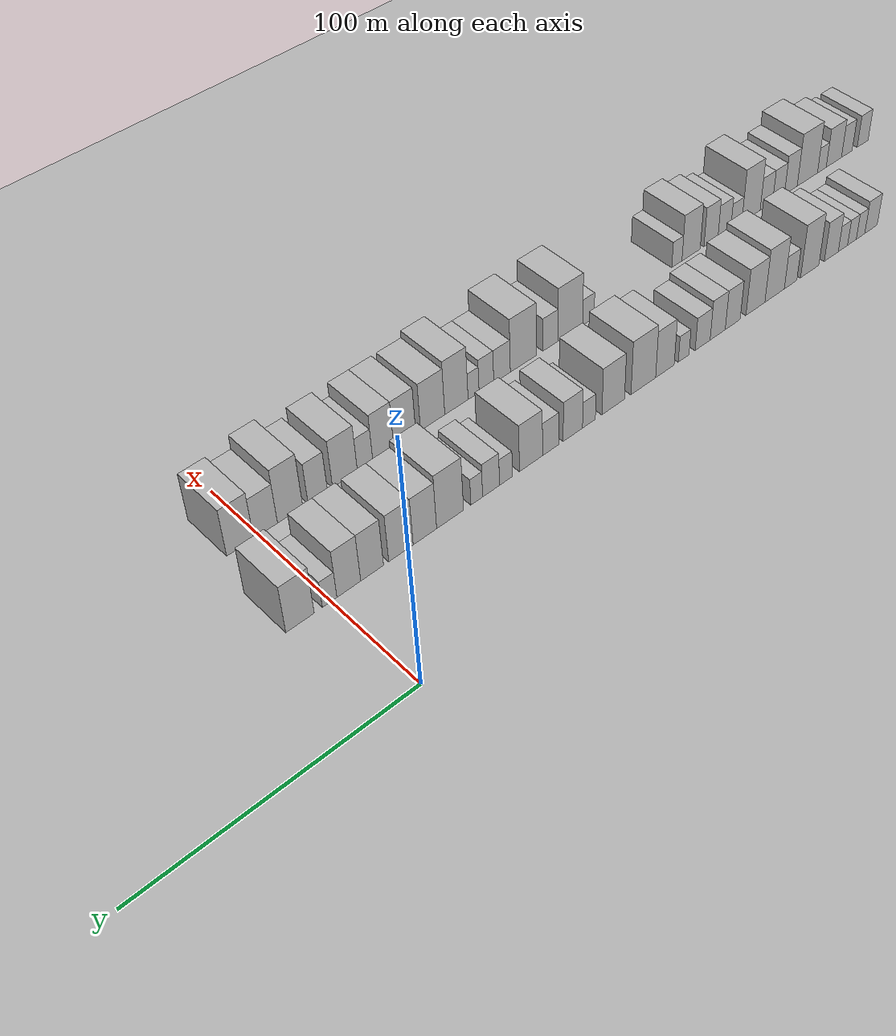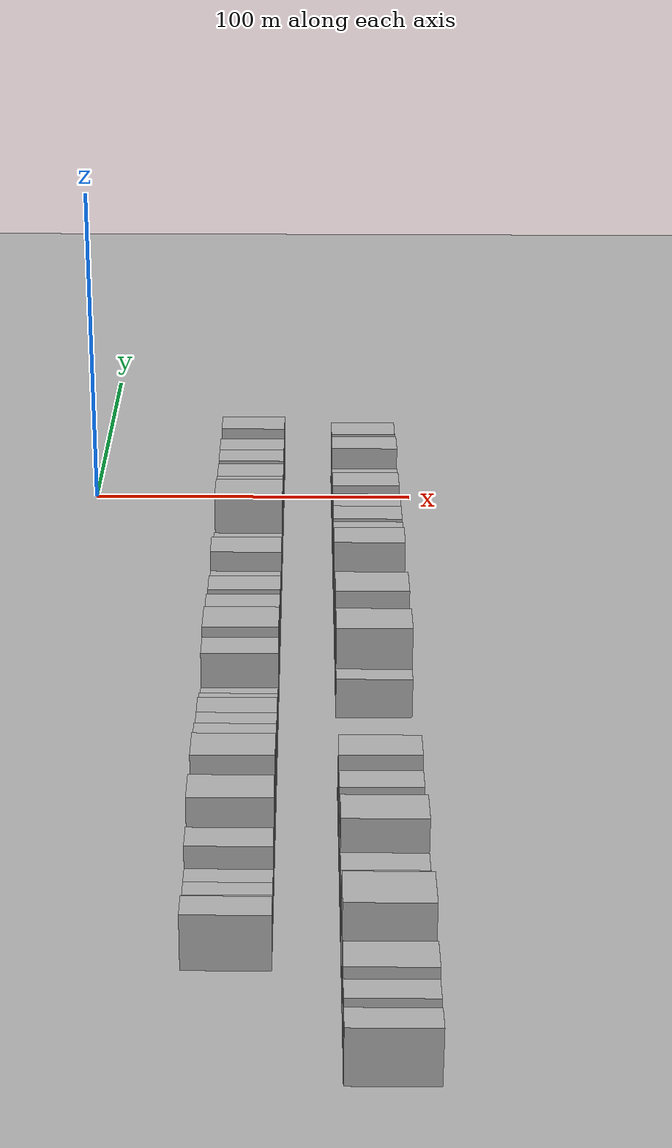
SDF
<sdf version="1.6">
 <world name="default">
  <include><name>ground_plane_1</name><uri>model://HANNAS_ground_plane</uri></include>
  <include>
   <name>ground_plane_2</name>
   <uri>model://HANNAS_ground_plane</uri>
   <pose>100 0 0  0 0 0</pose>
  </include>
  <model name="building_1">
   <static>1</static>
   <pose>50.0000 -248.3277 0 0.000000 0.000000 0.000000</pose>
   <link name="link">
    <pose>0 0 7.50 0 0 0</pose>
    <collision name="collision"><geometry><box><size>20.0000 7.1149 15.0000</size></box></geometry></collision>
    <visual name="visual">
     <cast_shadows>0</cast_shadows>
     <geometry><box><size>20.0000 7.1149 15.0000</size></box></geometry>
     <material>
      <script>
       <uri>model://HANNAS_wall/materials/scripts</uri>
       <uri>model://HANNAS_wall/materials/textures</uri>
       <name>vrc/HANNAS_wall</name>
      </script>
     </material>
    </visual>
   </link>
  </model>
  <model name="building_2">
   <static>1</static>
   <pose>50.0000 -242.3634 0 0.000000 0.000000 0.000000</pose>
   <link name="link">
    <pose>0 0 6.00 0 0 0</pose>
    <collision name="collision"><geometry><box><size>20.0000 4.8136 12.0000</size></box></geometry></collision>
    <visual name="visual">
     <cast_shadows>0</cast_shadows>
     <geometry><box><size>20.0000 4.8136 12.0000</size></box></geometry>
     <material>
      <script>
       <uri>model://HANNAS_wall/materials/scripts</uri>
       <uri>model://HANNAS_wall/materials/textures</uri>
       <name>vrc/HANNAS_wall</name>
      </script>
     </material>
    </visual>
   </link>
  </model>
  <model name="building_3">
   <static>1</static>
   <pose>50.0000 -237.5000 0 0.000000 0.000000 0.000000</pose>
   <link name="link">
    <pose>0 0 6.00 0 0 0</pose>
    <collision name="collision"><geometry><box><size>20.0000 4.9132 12.0000</size></box></geometry></collision>
    <visual name="visual">
     <cast_shadows>0</cast_shadows>
     <geometry><box><size>20.0000 4.9132 12.0000</size></box></geometry>
     <material>
      <script>
       <uri>model://HANNAS_wall/materials/scripts</uri>
       <uri>model://HANNAS_wall/materials/textures</uri>
       <name>vrc/HANNAS_wall</name>
      </script>
     </material>
    </visual>
   </link>
  </model>
  <model name="building_4">
   <static>1</static>
   <pose>50.0000 -232.4500 0 0.000000 0.000000 0.000000</pose>
   <link name="link">
    <pose>0 0 6.00 0 0 0</pose>
    <collision name="collision"><geometry><box><size>20.0000 5.1869 12.0000</size></box></geometry></collision>
    <visual name="visual">
     <cast_shadows>0</cast_shadows>
     <geometry><box><size>20.0000 5.1869 12.0000</size></box></geometry>
     <material>
      <script>
       <uri>model://HANNAS_wall/materials/scripts</uri>
       <uri>model://HANNAS_wall/materials/textures</uri>
       <name>vrc/HANNAS_wall</name>
      </script>
     </material>
    </visual>
   </link>
  </model>
  <model name="building_5">
   <static>1</static>
   <pose>50.0000 -226.0046 0 0.000000 0.000000 0.000000</pose>
   <link name="link">
    <pose>0 0 9.00 0 0 0</pose>
    <collision name="collision"><geometry><box><size>20.0000 7.7039 18.0000</size></box></geometry></collision>
    <visual name="visual">
     <cast_shadows>0</cast_shadows>
     <geometry><box><size>20.0000 7.7039 18.0000</size></box></geometry>
     <material>
      <script>
       <uri>model://HANNAS_wall/materials/scripts</uri>
       <uri>model://HANNAS_wall/materials/textures</uri>
       <name>vrc/HANNAS_wall</name>
      </script>
     </material>
    </visual>
   </link>
  </model>
  <model name="building_6">
   <static>1</static>
   <pose>50.0000 -214.1947 0 0.000000 0.000000 0.000000</pose>
   <link name="link">
    <pose>0 0 12.00 0 0 0</pose>
    <collision name="collision"><geometry><box><size>20.0000 9.9158 24.0000</size></box></geometry></collision>
    <visual name="visual">
     <cast_shadows>0</cast_shadows>
     <geometry><box><size>20.0000 9.9158 24.0000</size></box></geometry>
     <material>
      <script>
       <uri>model://HANNAS_wall/materials/scripts</uri>
       <uri>model://HANNAS_wall/materials/textures</uri>
       <name>vrc/HANNAS_wall</name>
      </script>
     </material>
    </visual>
   </link>
  </model>
  <model name="building_7">
   <static>1</static>
   <pose>50.0000 -203.8955 0 0.000000 0.000000 0.000000</pose>
   <link name="link">
    <pose>0 0 7.50 0 0 0</pose>
    <collision name="collision"><geometry><box><size>20.0000 6.6826 15.0000</size></box></geometry></collision>
    <visual name="visual">
     <cast_shadows>0</cast_shadows>
     <geometry><box><size>20.0000 6.6826 15.0000</size></box></geometry>
     <material>
      <script>
       <uri>model://HANNAS_wall/materials/scripts</uri>
       <uri>model://HANNAS_wall/materials/textures</uri>
       <name>vrc/HANNAS_wall</name>
      </script>
     </material>
    </visual>
   </link>
  </model>
  <model name="building_8">
   <static>1</static>
   <pose>50.0000 -195.4504 0 0.000000 0.000000 0.000000</pose>
   <link name="link">
    <pose>0 0 12.00 0 0 0</pose>
    <collision name="collision"><geometry><box><size>20.0000 10.2077 24.0000</size></box></geometry></collision>
    <visual name="visual">
     <cast_shadows>0</cast_shadows>
     <geometry><box><size>20.0000 10.2077 24.0000</size></box></geometry>
     <material>
      <script>
       <uri>model://HANNAS_wall/materials/scripts</uri>
       <uri>model://HANNAS_wall/materials/textures</uri>
       <name>vrc/HANNAS_wall</name>
      </script>
     </material>
    </visual>
   </link>
  </model>
  <model name="building_9">
   <static>1</static>
   <pose>50.0000 -185.4617 0 0.000000 0.000000 0.000000</pose>
   <link name="link">
    <pose>0 0 10.50 0 0 0</pose>
    <collision name="collision"><geometry><box><size>20.0000 9.7698 21.0000</size></box></geometry></collision>
    <visual name="visual">
     <cast_shadows>0</cast_shadows>
     <geometry><box><size>20.0000 9.7698 21.0000</size></box></geometry>
     <material>
      <script>
       <uri>model://HANNAS_wall/materials/scripts</uri>
       <uri>model://HANNAS_wall/materials/textures</uri>
       <name>vrc/HANNAS_wall</name>
      </script>
     </material>
    </visual>
   </link>
  </model>
  <model name="building_10">
   <static>1</static>
   <pose>50.0000 -173.8028 0 0.000000 0.000000 0.000000</pose>
   <link name="link">
    <pose>0 0 9.00 0 0 0</pose>
    <collision name="collision"><geometry><box><size>20.0000 7.5480 18.0000</size></box></geometry></collision>
    <visual name="visual">
     <cast_shadows>0</cast_shadows>
     <geometry><box><size>20.0000 7.5480 18.0000</size></box></geometry>
     <material>
      <script>
       <uri>model://HANNAS_wall/materials/scripts</uri>
       <uri>model://HANNAS_wall/materials/textures</uri>
       <name>vrc/HANNAS_wall</name>
      </script>
     </material>
    </visual>
   </link>
  </model>
  <model name="building_11">
   <static>1</static>
   <pose>50.0000 -166.2367 0 0.000000 0.000000 0.000000</pose>
   <link name="link">
    <pose>0 0 9.00 0 0 0</pose>
    <collision name="collision"><geometry><box><size>20.0000 7.5842 18.0000</size></box></geometry></collision>
    <visual name="visual">
     <cast_shadows>0</cast_shadows>
     <geometry><box><size>20.0000 7.5842 18.0000</size></box></geometry>
     <material>
      <script>
       <uri>model://HANNAS_wall/materials/scripts</uri>
       <uri>model://HANNAS_wall/materials/textures</uri>
       <name>vrc/HANNAS_wall</name>
      </script>
     </material>
    </visual>
   </link>
  </model>
  <model name="building_12">
   <static>1</static>
   <pose>50.0000 -158.7453 0 0.000000 0.000000 0.000000</pose>
   <link name="link">
    <pose>0 0 7.50 0 0 0</pose>
    <collision name="collision"><geometry><box><size>20.0000 7.3986 15.0000</size></box></geometry></collision>
    <visual name="visual">
     <cast_shadows>0</cast_shadows>
     <geometry><box><size>20.0000 7.3986 15.0000</size></box></geometry>
     <material>
      <script>
       <uri>model://HANNAS_wall/materials/scripts</uri>
       <uri>model://HANNAS_wall/materials/textures</uri>
       <name>vrc/HANNAS_wall</name>
      </script>
     </material>
    </visual>
   </link>
  </model>
  <model name="building_13">
   <static>1</static>
   <pose>50.0000 -149.4394 0 0.000000 0.000000 0.000000</pose>
   <link name="link">
    <pose>0 0 6.00 0 0 0</pose>
    <collision name="collision"><geometry><box><size>20.0000 5.2131 12.0000</size></box></geometry></collision>
    <visual name="visual">
     <cast_shadows>0</cast_shadows>
     <geometry><box><size>20.0000 5.2131 12.0000</size></box></geometry>
     <material>
      <script>
       <uri>model://HANNAS_wall/materials/scripts</uri>
       <uri>model://HANNAS_wall/materials/textures</uri>
       <name>vrc/HANNAS_wall</name>
      </script>
     </material>
    </visual>
   </link>
  </model>
  <model name="building_14">
   <static>1</static>
   <pose>50.0000 -140.3880 0 0.000000 0.000000 0.000000</pose>
   <link name="link">
    <pose>0 0 10.50 0 0 0</pose>
    <collision name="collision"><geometry><box><size>20.0000 8.8898 21.0000</size></box></geometry></collision>
    <visual name="visual">
     <cast_shadows>0</cast_shadows>
     <geometry><box><size>20.0000 8.8898 21.0000</size></box></geometry>
     <material>
      <script>
       <uri>model://HANNAS_wall/materials/scripts</uri>
       <uri>model://HANNAS_wall/materials/textures</uri>
       <name>vrc/HANNAS_wall</name>
      </script>
     </material>
    </visual>
   </link>
  </model>
  <model name="building_15">
   <static>1</static>
   <pose>50.0000 -130.1336 0 0.000000 0.000000 0.000000</pose>
   <link name="link">
    <pose>0 0 12.00 0 0 0</pose>
    <collision name="collision"><geometry><box><size>20.0000 11.6189 24.0000</size></box></geometry></collision>
    <visual name="visual">
     <cast_shadows>0</cast_shadows>
     <geometry><box><size>20.0000 11.6189 24.0000</size></box></geometry>
     <material>
      <script>
       <uri>model://HANNAS_wall/materials/scripts</uri>
       <uri>model://HANNAS_wall/materials/textures</uri>
       <name>vrc/HANNAS_wall</name>
      </script>
     </material>
    </visual>
   </link>
  </model>
  <model name="building_16">
   <static>1</static>
   <pose>50.0000 -116.1493 0 0.000000 0.000000 0.000000</pose>
   <link name="link">
    <pose>0 0 10.50 0 0 0</pose>
    <collision name="collision"><geometry><box><size>20.0000 10.3499 21.0000</size></box></geometry></collision>
    <visual name="visual">
     <cast_shadows>0</cast_shadows>
     <geometry><box><size>20.0000 10.3499 21.0000</size></box></geometry>
     <material>
      <script>
       <uri>model://HANNAS_wall/materials/scripts</uri>
       <uri>model://HANNAS_wall/materials/textures</uri>
       <name>vrc/HANNAS_wall</name>
      </script>
     </material>
    </visual>
   </link>
  </model>
  <model name="building_17">
   <static>1</static>
   <pose>50.0000 -105.0805 0 0.000000 0.000000 0.000000</pose>
   <link name="link">
    <pose>0 0 6.00 0 0 0</pose>
    <collision name="collision"><geometry><box><size>20.0000 5.7877 12.0000</size></box></geometry></collision>
    <visual name="visual">
     <cast_shadows>0</cast_shadows>
     <geometry><box><size>20.0000 5.7877 12.0000</size></box></geometry>
     <material>
      <script>
       <uri>model://HANNAS_wall/materials/scripts</uri>
       <uri>model://HANNAS_wall/materials/textures</uri>
       <name>vrc/HANNAS_wall</name>
      </script>
     </material>
    </visual>
   </link>
  </model>
  <model name="building_18">
   <static>1</static>
   <pose>50.0000 -97.8839 0 0.000000 0.000000 0.000000</pose>
   <link name="link">
    <pose>0 0 9.00 0 0 0</pose>
    <collision name="collision"><geometry><box><size>20.0000 8.6054 18.0000</size></box></geometry></collision>
    <visual name="visual">
     <cast_shadows>0</cast_shadows>
     <geometry><box><size>20.0000 8.6054 18.0000</size></box></geometry>
     <material>
      <script>
       <uri>model://HANNAS_wall/materials/scripts</uri>
       <uri>model://HANNAS_wall/materials/textures</uri>
       <name>vrc/HANNAS_wall</name>
      </script>
     </material>
    </visual>
   </link>
  </model>
  <model name="building_19">
   <static>1</static>
   <pose>50.0000 -88.0649 0 0.000000 0.000000 0.000000</pose>
   <link name="link">
    <pose>0 0 7.50 0 0 0</pose>
    <collision name="collision"><geometry><box><size>20.0000 7.0328 15.0000</size></box></geometry></collision>
    <visual name="visual">
     <cast_shadows>0</cast_shadows>
     <geometry><box><size>20.0000 7.0328 15.0000</size></box></geometry>
     <material>
      <script>
       <uri>model://HANNAS_wall/materials/scripts</uri>
       <uri>model://HANNAS_wall/materials/textures</uri>
       <name>vrc/HANNAS_wall</name>
      </script>
     </material>
    </visual>
   </link>
  </model>
  <model name="building_20">
   <static>1</static>
   <pose>50.0000 -79.5889 0 0.000000 0.000000 0.000000</pose>
   <link name="link">
    <pose>0 0 10.50 0 0 0</pose>
    <collision name="collision"><geometry><box><size>20.0000 9.9191 21.0000</size></box></geometry></collision>
    <visual name="visual">
     <cast_shadows>0</cast_shadows>
     <geometry><box><size>20.0000 9.9191 21.0000</size></box></geometry>
     <material>
      <script>
       <uri>model://HANNAS_wall/materials/scripts</uri>
       <uri>model://HANNAS_wall/materials/textures</uri>
       <name>vrc/HANNAS_wall</name>
      </script>
     </material>
    </visual>
   </link>
  </model>
  <model name="building_21">
   <static>1</static>
   <pose>50.0000 -68.9209 0 0.000000 0.000000 0.000000</pose>
   <link name="link">
    <pose>0 0 6.00 0 0 0</pose>
    <collision name="collision"><geometry><box><size>20.0000 5.4170 12.0000</size></box></geometry></collision>
    <visual name="visual">
     <cast_shadows>0</cast_shadows>
     <geometry><box><size>20.0000 5.4170 12.0000</size></box></geometry>
     <material>
      <script>
       <uri>model://HANNAS_wall/materials/scripts</uri>
       <uri>model://HANNAS_wall/materials/textures</uri>
       <name>vrc/HANNAS_wall</name>
      </script>
     </material>
    </visual>
   </link>
  </model>
  <model name="building_22">
   <static>1</static>
   <pose>50.0000 -62.6847 0 0.000000 0.000000 0.000000</pose>
   <link name="link">
    <pose>0 0 7.50 0 0 0</pose>
    <collision name="collision"><geometry><box><size>20.0000 7.0552 15.0000</size></box></geometry></collision>
    <visual name="visual">
     <cast_shadows>0</cast_shadows>
     <geometry><box><size>20.0000 7.0552 15.0000</size></box></geometry>
     <material>
      <script>
       <uri>model://HANNAS_wall/materials/scripts</uri>
       <uri>model://HANNAS_wall/materials/textures</uri>
       <name>vrc/HANNAS_wall</name>
      </script>
     </material>
    </visual>
   </link>
  </model>
  <model name="building_23">
   <static>1</static>
   <pose>50.0000 -56.7431 0 0.000000 0.000000 0.000000</pose>
   <link name="link">
    <pose>0 0 6.00 0 0 0</pose>
    <collision name="collision"><geometry><box><size>20.0000 4.8282 12.0000</size></box></geometry></collision>
    <visual name="visual">
     <cast_shadows>0</cast_shadows>
     <geometry><box><size>20.0000 4.8282 12.0000</size></box></geometry>
     <material>
      <script>
       <uri>model://HANNAS_wall/materials/scripts</uri>
       <uri>model://HANNAS_wall/materials/textures</uri>
       <name>vrc/HANNAS_wall</name>
      </script>
     </material>
    </visual>
   </link>
  </model>
  <model name="building_24">
   <static>1</static>
   <pose>50.0000 -45.8779 0 0.000000 0.000000 0.000000</pose>
   <link name="link">
    <pose>0 0 12.00 0 0 0</pose>
    <collision name="collision"><geometry><box><size>20.0000 10.9021 24.0000</size></box></geometry></collision>
    <visual name="visual">
     <cast_shadows>0</cast_shadows>
     <geometry><box><size>20.0000 10.9021 24.0000</size></box></geometry>
     <material>
      <script>
       <uri>model://HANNAS_wall/materials/scripts</uri>
       <uri>model://HANNAS_wall/materials/textures</uri>
       <name>vrc/HANNAS_wall</name>
      </script>
     </material>
    </visual>
   </link>
  </model>
  <model name="building_25">
   <static>1</static>
   <pose>50.0000 -35.7782 0 0.000000 0.000000 0.000000</pose>
   <link name="link">
    <pose>0 0 10.50 0 0 0</pose>
    <collision name="collision"><geometry><box><size>20.0000 9.2973 21.0000</size></box></geometry></collision>
    <visual name="visual">
     <cast_shadows>0</cast_shadows>
     <geometry><box><size>20.0000 9.2973 21.0000</size></box></geometry>
     <material>
      <script>
       <uri>model://HANNAS_wall/materials/scripts</uri>
       <uri>model://HANNAS_wall/materials/textures</uri>
       <name>vrc/HANNAS_wall</name>
      </script>
     </material>
    </visual>
   </link>
  </model>
  <model name="building_26">
   <static>1</static>
   <pose>50.0000 -26.3639 0 0.000000 0.000000 0.000000</pose>
   <link name="link">
    <pose>0 0 10.50 0 0 0</pose>
    <collision name="collision"><geometry><box><size>20.0000 9.5312 21.0000</size></box></geometry></collision>
    <visual name="visual">
     <cast_shadows>0</cast_shadows>
     <geometry><box><size>20.0000 9.5312 21.0000</size></box></geometry>
     <material>
      <script>
       <uri>model://HANNAS_wall/materials/scripts</uri>
       <uri>model://HANNAS_wall/materials/textures</uri>
       <name>vrc/HANNAS_wall</name>
      </script>
     </material>
    </visual>
   </link>
  </model>
  <model name="building_27">
   <static>1</static>
   <pose>50.0000 -15.2484 0 0.000000 0.000000 0.000000</pose>
   <link name="link">
    <pose>0 0 10.50 0 0 0</pose>
    <collision name="collision"><geometry><box><size>20.0000 8.6997 21.0000</size></box></geometry></collision>
    <visual name="visual">
     <cast_shadows>0</cast_shadows>
     <geometry><box><size>20.0000 8.6997 21.0000</size></box></geometry>
     <material>
      <script>
       <uri>model://HANNAS_wall/materials/scripts</uri>
       <uri>model://HANNAS_wall/materials/textures</uri>
       <name>vrc/HANNAS_wall</name>
      </script>
     </material>
    </visual>
   </link>
  </model>
  <model name="building_28">
   <static>1</static>
   <pose>50.0000 -6.4340 0 0.000000 0.000000 0.000000</pose>
   <link name="link">
    <pose>0 0 10.50 0 0 0</pose>
    <collision name="collision"><geometry><box><size>20.0000 8.9290 21.0000</size></box></geometry></collision>
    <visual name="visual">
     <cast_shadows>0</cast_shadows>
     <geometry><box><size>20.0000 8.9290 21.0000</size></box></geometry>
     <material>
      <script>
       <uri>model://HANNAS_wall/materials/scripts</uri>
       <uri>model://HANNAS_wall/materials/textures</uri>
       <name>vrc/HANNAS_wall</name>
      </script>
     </material>
    </visual>
   </link>
  </model>
  <model name="building_29">
   <static>1</static>
   <pose>50.0000 0.7145 0 0.000000 0.000000 0.000000</pose>
   <link name="link">
    <pose>0 0 6.00 0 0 0</pose>
    <collision name="collision"><geometry><box><size>20.0000 5.3681 12.0000</size></box></geometry></collision>
    <visual name="visual">
     <cast_shadows>0</cast_shadows>
     <geometry><box><size>20.0000 5.3681 12.0000</size></box></geometry>
     <material>
      <script>
       <uri>model://HANNAS_wall/materials/scripts</uri>
       <uri>model://HANNAS_wall/materials/textures</uri>
       <name>vrc/HANNAS_wall</name>
      </script>
     </material>
    </visual>
   </link>
  </model>
  <model name="building_30">
   <static>1</static>
   <pose>50.0000 11.5483 0 0.000000 0.000000 0.000000</pose>
   <link name="link">
    <pose>0 0 10.50 0 0 0</pose>
    <collision name="collision"><geometry><box><size>20.0000 10.2995 21.0000</size></box></geometry></collision>
    <visual name="visual">
     <cast_shadows>0</cast_shadows>
     <geometry><box><size>20.0000 10.2995 21.0000</size></box></geometry>
     <material>
      <script>
       <uri>model://HANNAS_wall/materials/scripts</uri>
       <uri>model://HANNAS_wall/materials/textures</uri>
       <name>vrc/HANNAS_wall</name>
      </script>
     </material>
    </visual>
   </link>
  </model>
  <model name="building_64">
   <static>1</static>
   <pose>85.0000 -286.7064 0 0.000000 0.000000 0.000000</pose>
   <link name="link">
    <pose>0 0 7.50 0 0 0</pose>
    <collision name="collision"><geometry><box><size>20.0000 6.5872 15.0000</size></box></geometry></collision>
    <visual name="visual">
     <cast_shadows>0</cast_shadows>
     <geometry><box><size>20.0000 6.5872 15.0000</size></box></geometry>
     <material>
      <script>
       <uri>model://HANNAS_wall/materials/scripts</uri>
       <uri>model://HANNAS_wall/materials/textures</uri>
       <name>vrc/HANNAS_wall</name>
      </script>
     </material>
    </visual>
   </link>
  </model>
  <model name="building_65">
   <static>1</static>
   <pose>85.0000 -277.2148 0 0.000000 0.000000 0.000000</pose>
   <link name="link">
    <pose>0 0 7.50 0 0 0</pose>
    <collision name="collision"><geometry><box><size>20.0000 6.3959 15.0000</size></box></geometry></collision>
    <visual name="visual">
     <cast_shadows>0</cast_shadows>
     <geometry><box><size>20.0000 6.3959 15.0000</size></box></geometry>
     <material>
      <script>
       <uri>model://HANNAS_wall/materials/scripts</uri>
       <uri>model://HANNAS_wall/materials/textures</uri>
       <name>vrc/HANNAS_wall</name>
      </script>
     </material>
    </visual>
   </link>
  </model>
  <model name="building_66">
   <static>1</static>
   <pose>85.0000 -269.5321 0 0.000000 0.000000 0.000000</pose>
   <link name="link">
    <pose>0 0 9.00 0 0 0</pose>
    <collision name="collision"><geometry><box><size>20.0000 8.9697 18.0000</size></box></geometry></collision>
    <visual name="visual">
     <cast_shadows>0</cast_shadows>
     <geometry><box><size>20.0000 8.9697 18.0000</size></box></geometry>
     <material>
      <script>
       <uri>model://HANNAS_wall/materials/scripts</uri>
       <uri>model://HANNAS_wall/materials/textures</uri>
       <name>vrc/HANNAS_wall</name>
      </script>
     </material>
    </visual>
   </link>
  </model>
  <model name="building_67">
   <static>1</static>
   <pose>85.0000 -262.4926 0 0.000000 0.000000 0.000000</pose>
   <link name="link">
    <pose>0 0 6.00 0 0 0</pose>
    <collision name="collision"><geometry><box><size>20.0000 5.1092 12.0000</size></box></geometry></collision>
    <visual name="visual">
     <cast_shadows>0</cast_shadows>
     <geometry><box><size>20.0000 5.1092 12.0000</size></box></geometry>
     <material>
      <script>
       <uri>model://HANNAS_wall/materials/scripts</uri>
       <uri>model://HANNAS_wall/materials/textures</uri>
       <name>vrc/HANNAS_wall</name>
      </script>
     </material>
    </visual>
   </link>
  </model>
  <model name="building_68">
   <static>1</static>
   <pose>85.0000 -254.1048 0 0.000000 0.000000 0.000000</pose>
   <link name="link">
    <pose>0 0 12.00 0 0 0</pose>
    <collision name="collision"><geometry><box><size>20.0000 11.6662 24.0000</size></box></geometry></collision>
    <visual name="visual">
     <cast_shadows>0</cast_shadows>
     <geometry><box><size>20.0000 11.6662 24.0000</size></box></geometry>
     <material>
      <script>
       <uri>model://HANNAS_wall/materials/scripts</uri>
       <uri>model://HANNAS_wall/materials/textures</uri>
       <name>vrc/HANNAS_wall</name>
      </script>
     </material>
    </visual>
   </link>
  </model>
  <model name="building_69">
   <static>1</static>
   <pose>85.0000 -244.6632 0 0.000000 0.000000 0.000000</pose>
   <link name="link">
    <pose>0 0 9.00 0 0 0</pose>
    <collision name="collision"><geometry><box><size>20.0000 7.2171 18.0000</size></box></geometry></collision>
    <visual name="visual">
     <cast_shadows>0</cast_shadows>
     <geometry><box><size>20.0000 7.2171 18.0000</size></box></geometry>
     <material>
      <script>
       <uri>model://HANNAS_wall/materials/scripts</uri>
       <uri>model://HANNAS_wall/materials/textures</uri>
       <name>vrc/HANNAS_wall</name>
      </script>
     </material>
    </visual>
   </link>
  </model>
  <model name="building_70">
   <static>1</static>
   <pose>85.0000 -237.7444 0 0.000000 0.000000 0.000000</pose>
   <link name="link">
    <pose>0 0 7.50 0 0 0</pose>
    <collision name="collision"><geometry><box><size>20.0000 6.6206 15.0000</size></box></geometry></collision>
    <visual name="visual">
     <cast_shadows>0</cast_shadows>
     <geometry><box><size>20.0000 6.6206 15.0000</size></box></geometry>
     <material>
      <script>
       <uri>model://HANNAS_wall/materials/scripts</uri>
       <uri>model://HANNAS_wall/materials/textures</uri>
       <name>vrc/HANNAS_wall</name>
      </script>
     </material>
    </visual>
   </link>
  </model>
  <model name="building_71">
   <static>1</static>
   <pose>85.0000 -230.9729 0 0.000000 0.000000 0.000000</pose>
   <link name="link">
    <pose>0 0 7.50 0 0 0</pose>
    <collision name="collision"><geometry><box><size>20.0000 6.9222 15.0000</size></box></geometry></collision>
    <visual name="visual">
     <cast_shadows>0</cast_shadows>
     <geometry><box><size>20.0000 6.9222 15.0000</size></box></geometry>
     <material>
      <script>
       <uri>model://HANNAS_wall/materials/scripts</uri>
       <uri>model://HANNAS_wall/materials/textures</uri>
       <name>vrc/HANNAS_wall</name>
      </script>
     </material>
    </visual>
   </link>
  </model>
  <model name="building_72">
   <static>1</static>
   <pose>85.0000 -222.4813 0 0.000000 0.000000 0.000000</pose>
   <link name="link">
    <pose>0 0 12.00 0 0 0</pose>
    <collision name="collision"><geometry><box><size>20.0000 10.0610 24.0000</size></box></geometry></collision>
    <visual name="visual">
     <cast_shadows>0</cast_shadows>
     <geometry><box><size>20.0000 10.0610 24.0000</size></box></geometry>
     <material>
      <script>
       <uri>model://HANNAS_wall/materials/scripts</uri>
       <uri>model://HANNAS_wall/materials/textures</uri>
       <name>vrc/HANNAS_wall</name>
      </script>
     </material>
    </visual>
   </link>
  </model>
  <model name="building_73">
   <static>1</static>
   <pose>85.0000 -214.4530 0 0.000000 0.000000 0.000000</pose>
   <link name="link">
    <pose>0 0 6.00 0 0 0</pose>
    <collision name="collision"><geometry><box><size>20.0000 5.9957 12.0000</size></box></geometry></collision>
    <visual name="visual">
     <cast_shadows>0</cast_shadows>
     <geometry><box><size>20.0000 5.9957 12.0000</size></box></geometry>
     <material>
      <script>
       <uri>model://HANNAS_wall/materials/scripts</uri>
       <uri>model://HANNAS_wall/materials/textures</uri>
       <name>vrc/HANNAS_wall</name>
      </script>
     </material>
    </visual>
   </link>
  </model>
  <model name="building_74">
   <static>1</static>
   <pose>85.0000 -208.0297 0 0.000000 0.000000 0.000000</pose>
   <link name="link">
    <pose>0 0 7.50 0 0 0</pose>
    <collision name="collision"><geometry><box><size>20.0000 6.8509 15.0000</size></box></geometry></collision>
    <visual name="visual">
     <cast_shadows>0</cast_shadows>
     <geometry><box><size>20.0000 6.8509 15.0000</size></box></geometry>
     <material>
      <script>
       <uri>model://HANNAS_wall/materials/scripts</uri>
       <uri>model://HANNAS_wall/materials/textures</uri>
       <name>vrc/HANNAS_wall</name>
      </script>
     </material>
    </visual>
   </link>
  </model>
  <model name="building_75">
   <static>1</static>
   <pose>85.0000 -200.8981 0 0.000000 0.000000 0.000000</pose>
   <link name="link">
    <pose>0 0 9.00 0 0 0</pose>
    <collision name="collision"><geometry><box><size>20.0000 7.4121 18.0000</size></box></geometry></collision>
    <visual name="visual">
     <cast_shadows>0</cast_shadows>
     <geometry><box><size>20.0000 7.4121 18.0000</size></box></geometry>
     <material>
      <script>
       <uri>model://HANNAS_wall/materials/scripts</uri>
       <uri>model://HANNAS_wall/materials/textures</uri>
       <name>vrc/HANNAS_wall</name>
      </script>
     </material>
    </visual>
   </link>
  </model>
  <model name="building_76">
   <static>1</static>
   <pose>85.0000 -190.4546 0 0.000000 0.000000 0.000000</pose>
   <link name="link">
    <pose>0 0 10.50 0 0 0</pose>
    <collision name="collision"><geometry><box><size>20.0000 9.4750 21.0000</size></box></geometry></collision>
    <visual name="visual">
     <cast_shadows>0</cast_shadows>
     <geometry><box><size>20.0000 9.4750 21.0000</size></box></geometry>
     <material>
      <script>
       <uri>model://HANNAS_wall/materials/scripts</uri>
       <uri>model://HANNAS_wall/materials/textures</uri>
       <name>vrc/HANNAS_wall</name>
      </script>
     </material>
    </visual>
   </link>
  </model>
  <model name="building_77">
   <static>1</static>
   <pose>85.0000 -183.0988 0 0.000000 0.000000 0.000000</pose>
   <link name="link">
    <pose>0 0 6.00 0 0 0</pose>
    <collision name="collision"><geometry><box><size>20.0000 5.2366 12.0000</size></box></geometry></collision>
    <visual name="visual">
     <cast_shadows>0</cast_shadows>
     <geometry><box><size>20.0000 5.2366 12.0000</size></box></geometry>
     <material>
      <script>
       <uri>model://HANNAS_wall/materials/scripts</uri>
       <uri>model://HANNAS_wall/materials/textures</uri>
       <name>vrc/HANNAS_wall</name>
      </script>
     </material>
    </visual>
   </link>
  </model>
  <model name="building_78">
   <static>1</static>
   <pose>85.0000 -139.1840 0 0.000000 0.000000 0.000000</pose>
   <link name="link">
    <pose>0 0 6.00 0 0 0</pose>
    <collision name="collision"><geometry><box><size>20.0000 5.5310 12.0000</size></box></geometry></collision>
    <visual name="visual">
     <cast_shadows>0</cast_shadows>
     <geometry><box><size>20.0000 5.5310 12.0000</size></box></geometry>
     <material>
      <script>
       <uri>model://HANNAS_wall/materials/scripts</uri>
       <uri>model://HANNAS_wall/materials/textures</uri>
       <name>vrc/HANNAS_wall</name>
      </script>
     </material>
    </visual>
   </link>
  </model>
  <model name="building_79">
   <static>1</static>
   <pose>85.0000 -130.6604 0 0.000000 0.000000 0.000000</pose>
   <link name="link">
    <pose>0 0 12.00 0 0 0</pose>
    <collision name="collision"><geometry><box><size>20.0000 11.5163 24.0000</size></box></geometry></collision>
    <visual name="visual">
     <cast_shadows>0</cast_shadows>
     <geometry><box><size>20.0000 11.5163 24.0000</size></box></geometry>
     <material>
      <script>
       <uri>model://HANNAS_wall/materials/scripts</uri>
       <uri>model://HANNAS_wall/materials/textures</uri>
       <name>vrc/HANNAS_wall</name>
      </script>
     </material>
    </visual>
   </link>
  </model>
  <model name="building_80">
   <static>1</static>
   <pose>85.0000 -121.3736 0 0.000000 0.000000 0.000000</pose>
   <link name="link">
    <pose>0 0 7.50 0 0 0</pose>
    <collision name="collision"><geometry><box><size>20.0000 7.0573 15.0000</size></box></geometry></collision>
    <visual name="visual">
     <cast_shadows>0</cast_shadows>
     <geometry><box><size>20.0000 7.0573 15.0000</size></box></geometry>
     <material>
      <script>
       <uri>model://HANNAS_wall/materials/scripts</uri>
       <uri>model://HANNAS_wall/materials/textures</uri>
       <name>vrc/HANNAS_wall</name>
      </script>
     </material>
    </visual>
   </link>
  </model>
  <model name="building_81">
   <static>1</static>
   <pose>85.0000 -108.8997 0 0.000000 0.000000 0.000000</pose>
   <link name="link">
    <pose>0 0 12.00 0 0 0</pose>
    <collision name="collision"><geometry><box><size>20.0000 11.8905 24.0000</size></box></geometry></collision>
    <visual name="visual">
     <cast_shadows>0</cast_shadows>
     <geometry><box><size>20.0000 11.8905 24.0000</size></box></geometry>
     <material>
      <script>
       <uri>model://HANNAS_wall/materials/scripts</uri>
       <uri>model://HANNAS_wall/materials/textures</uri>
       <name>vrc/HANNAS_wall</name>
      </script>
     </material>
    </visual>
   </link>
  </model>
  <model name="building_82">
   <static>1</static>
   <pose>85.0000 -99.2507 0 0.000000 0.000000 0.000000</pose>
   <link name="link">
    <pose>0 0 7.50 0 0 0</pose>
    <collision name="collision"><geometry><box><size>20.0000 7.4075 15.0000</size></box></geometry></collision>
    <visual name="visual">
     <cast_shadows>0</cast_shadows>
     <geometry><box><size>20.0000 7.4075 15.0000</size></box></geometry>
     <material>
      <script>
       <uri>model://HANNAS_wall/materials/scripts</uri>
       <uri>model://HANNAS_wall/materials/textures</uri>
       <name>vrc/HANNAS_wall</name>
      </script>
     </material>
    </visual>
   </link>
  </model>
  <model name="building_83">
   <static>1</static>
   <pose>85.0000 -92.3049 0 0.000000 0.000000 0.000000</pose>
   <link name="link">
    <pose>0 0 7.50 0 0 0</pose>
    <collision name="collision"><geometry><box><size>20.0000 6.4841 15.0000</size></box></geometry></collision>
    <visual name="visual">
     <cast_shadows>0</cast_shadows>
     <geometry><box><size>20.0000 6.4841 15.0000</size></box></geometry>
     <material>
      <script>
       <uri>model://HANNAS_wall/materials/scripts</uri>
       <uri>model://HANNAS_wall/materials/textures</uri>
       <name>vrc/HANNAS_wall</name>
      </script>
     </material>
    </visual>
   </link>
  </model>
  <model name="building_84">
   <static>1</static>
   <pose>85.0000 -86.6587 0 0.000000 0.000000 0.000000</pose>
   <link name="link">
    <pose>0 0 6.00 0 0 0</pose>
    <collision name="collision"><geometry><box><size>20.0000 4.8084 12.0000</size></box></geometry></collision>
    <visual name="visual">
     <cast_shadows>0</cast_shadows>
     <geometry><box><size>20.0000 4.8084 12.0000</size></box></geometry>
     <material>
      <script>
       <uri>model://HANNAS_wall/materials/scripts</uri>
       <uri>model://HANNAS_wall/materials/textures</uri>
       <name>vrc/HANNAS_wall</name>
      </script>
     </material>
    </visual>
   </link>
  </model>
  <model name="building_85">
   <static>1</static>
   <pose>85.0000 -79.2199 0 0.000000 0.000000 0.000000</pose>
   <link name="link">
    <pose>0 0 12.00 0 0 0</pose>
    <collision name="collision"><geometry><box><size>20.0000 10.0691 24.0000</size></box></geometry></collision>
    <visual name="visual">
     <cast_shadows>0</cast_shadows>
     <geometry><box><size>20.0000 10.0691 24.0000</size></box></geometry>
     <material>
      <script>
       <uri>model://HANNAS_wall/materials/scripts</uri>
       <uri>model://HANNAS_wall/materials/textures</uri>
       <name>vrc/HANNAS_wall</name>
      </script>
     </material>
    </visual>
   </link>
  </model>
  <model name="building_86">
   <static>1</static>
   <pose>85.0000 -69.0376 0 0.000000 0.000000 0.000000</pose>
   <link name="link">
    <pose>0 0 10.50 0 0 0</pose>
    <collision name="collision"><geometry><box><size>20.0000 10.2957 21.0000</size></box></geometry></collision>
    <visual name="visual">
     <cast_shadows>0</cast_shadows>
     <geometry><box><size>20.0000 10.2957 21.0000</size></box></geometry>
     <material>
      <script>
       <uri>model://HANNAS_wall/materials/scripts</uri>
       <uri>model://HANNAS_wall/materials/textures</uri>
       <name>vrc/HANNAS_wall</name>
      </script>
     </material>
    </visual>
   </link>
  </model>
  <model name="building_87">
   <static>1</static>
   <pose>85.0000 -57.3204 0 0.000000 0.000000 0.000000</pose>
   <link name="link">
    <pose>0 0 10.50 0 0 0</pose>
    <collision name="collision"><geometry><box><size>20.0000 9.1387 21.0000</size></box></geometry></collision>
    <visual name="visual">
     <cast_shadows>0</cast_shadows>
     <geometry><box><size>20.0000 9.1387 21.0000</size></box></geometry>
     <material>
      <script>
       <uri>model://HANNAS_wall/materials/scripts</uri>
       <uri>model://HANNAS_wall/materials/textures</uri>
       <name>vrc/HANNAS_wall</name>
      </script>
     </material>
    </visual>
   </link>
  </model>
  <model name="building_88">
   <static>1</static>
   <pose>85.0000 -48.4786 0 0.000000 0.000000 0.000000</pose>
   <link name="link">
    <pose>0 0 10.50 0 0 0</pose>
    <collision name="collision"><geometry><box><size>20.0000 8.5449 21.0000</size></box></geometry></collision>
    <visual name="visual">
     <cast_shadows>0</cast_shadows>
     <geometry><box><size>20.0000 8.5449 21.0000</size></box></geometry>
     <material>
      <script>
       <uri>model://HANNAS_wall/materials/scripts</uri>
       <uri>model://HANNAS_wall/materials/textures</uri>
       <name>vrc/HANNAS_wall</name>
      </script>
     </material>
    </visual>
   </link>
  </model>
  <model name="building_89">
   <static>1</static>
   <pose>85.0000 -41.0953 0 0.000000 0.000000 0.000000</pose>
   <link name="link">
    <pose>0 0 7.50 0 0 0</pose>
    <collision name="collision"><geometry><box><size>20.0000 6.2216 15.0000</size></box></geometry></collision>
    <visual name="visual">
     <cast_shadows>0</cast_shadows>
     <geometry><box><size>20.0000 6.2216 15.0000</size></box></geometry>
     <material>
      <script>
       <uri>model://HANNAS_wall/materials/scripts</uri>
       <uri>model://HANNAS_wall/materials/textures</uri>
       <name>vrc/HANNAS_wall</name>
      </script>
     </material>
    </visual>
   </link>
  </model>
  <model name="building_90">
   <static>1</static>
   <pose>85.0000 -33.0360 0 0.000000 0.000000 0.000000</pose>
   <link name="link">
    <pose>0 0 10.50 0 0 0</pose>
    <collision name="collision"><geometry><box><size>20.0000 9.8969 21.0000</size></box></geometry></collision>
    <visual name="visual">
     <cast_shadows>0</cast_shadows>
     <geometry><box><size>20.0000 9.8969 21.0000</size></box></geometry>
     <material>
      <script>
       <uri>model://HANNAS_wall/materials/scripts</uri>
       <uri>model://HANNAS_wall/materials/textures</uri>
       <name>vrc/HANNAS_wall</name>
      </script>
     </material>
    </visual>
   </link>
  </model>
  <model name="building_91">
   <static>1</static>
   <pose>85.0000 -22.2916 0 0.000000 0.000000 0.000000</pose>
   <link name="link">
    <pose>0 0 9.00 0 0 0</pose>
    <collision name="collision"><geometry><box><size>20.0000 7.5919 18.0000</size></box></geometry></collision>
    <visual name="visual">
     <cast_shadows>0</cast_shadows>
     <geometry><box><size>20.0000 7.5919 18.0000</size></box></geometry>
     <material>
      <script>
       <uri>model://HANNAS_wall/materials/scripts</uri>
       <uri>model://HANNAS_wall/materials/textures</uri>
       <name>vrc/HANNAS_wall</name>
      </script>
     </material>
    </visual>
   </link>
  </model>
  <model name="building_92">
   <static>1</static>
   <pose>85.0000 -11.6652 0 0.000000 0.000000 0.000000</pose>
   <link name="link">
    <pose>0 0 12.00 0 0 0</pose>
    <collision name="collision"><geometry><box><size>20.0000 9.6609 24.0000</size></box></geometry></collision>
    <visual name="visual">
     <cast_shadows>0</cast_shadows>
     <geometry><box><size>20.0000 9.6609 24.0000</size></box></geometry>
     <material>
      <script>
       <uri>model://HANNAS_wall/materials/scripts</uri>
       <uri>model://HANNAS_wall/materials/textures</uri>
       <name>vrc/HANNAS_wall</name>
      </script>
     </material>
    </visual>
   </link>
  </model>
  <model name="building_93">
   <static>1</static>
   <pose>85.0000 -2.3590 0 0.000000 0.000000 0.000000</pose>
   <link name="link">
    <pose>0 0 9.00 0 0 0</pose>
    <collision name="collision"><geometry><box><size>20.0000 8.9514 18.0000</size></box></geometry></collision>
    <visual name="visual">
     <cast_shadows>0</cast_shadows>
     <geometry><box><size>20.0000 8.9514 18.0000</size></box></geometry>
     <material>
      <script>
       <uri>model://HANNAS_wall/materials/scripts</uri>
       <uri>model://HANNAS_wall/materials/textures</uri>
       <name>vrc/HANNAS_wall</name>
      </script>
     </material>
    </visual>
   </link>
  </model>
  <model name="building_94">
   <static>1</static>
   <pose>85.0000 7.1049 0 0.000000 0.000000 0.000000</pose>
   <link name="link">
    <pose>0 0 10.50 0 0 0</pose>
    <collision name="collision"><geometry><box><size>20.0000 9.9765 21.0000</size></box></geometry></collision>
    <visual name="visual">
     <cast_shadows>0</cast_shadows>
     <geometry><box><size>20.0000 9.9765 21.0000</size></box></geometry>
     <material>
      <script>
       <uri>model://HANNAS_wall/materials/scripts</uri>
       <uri>model://HANNAS_wall/materials/textures</uri>
       <name>vrc/HANNAS_wall</name>
      </script>
     </material>
    </visual>
   </link>
  </model>
 </world>
</sdf>
